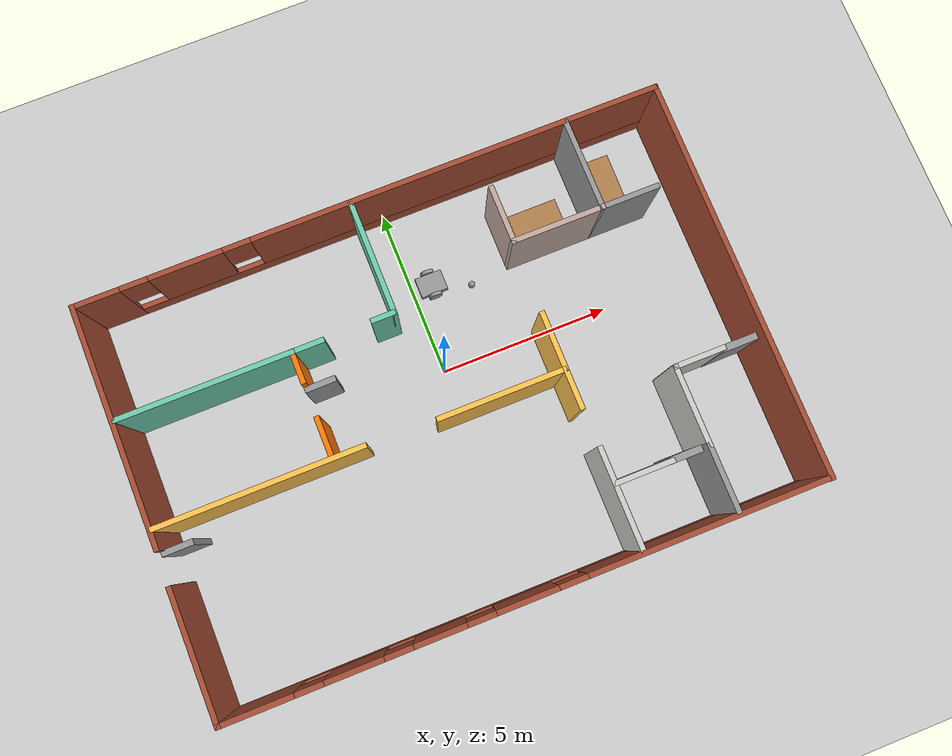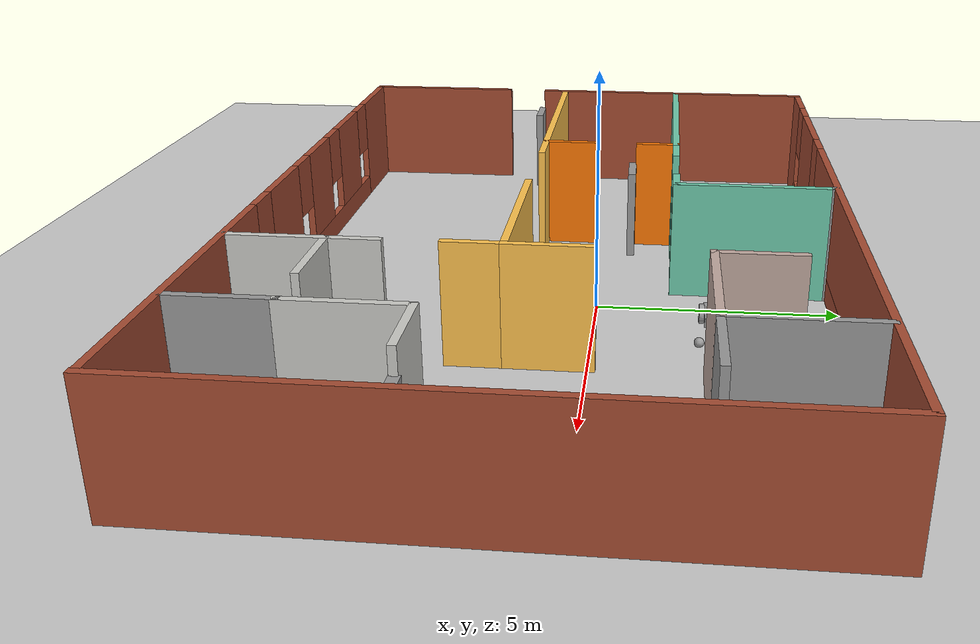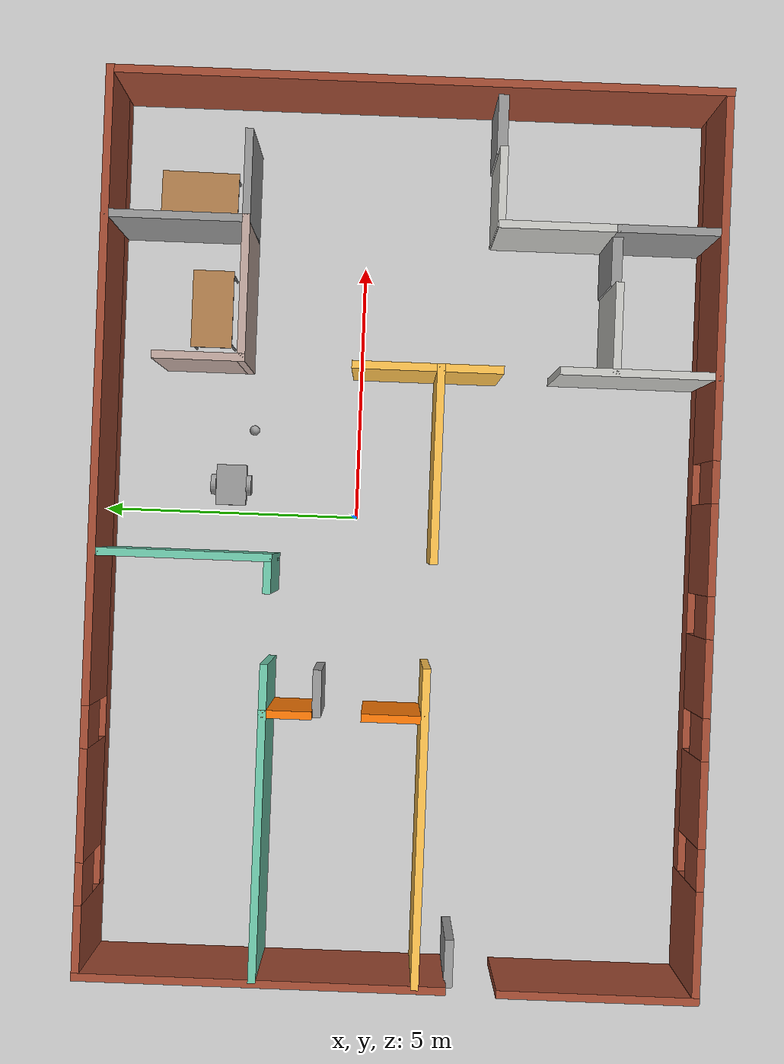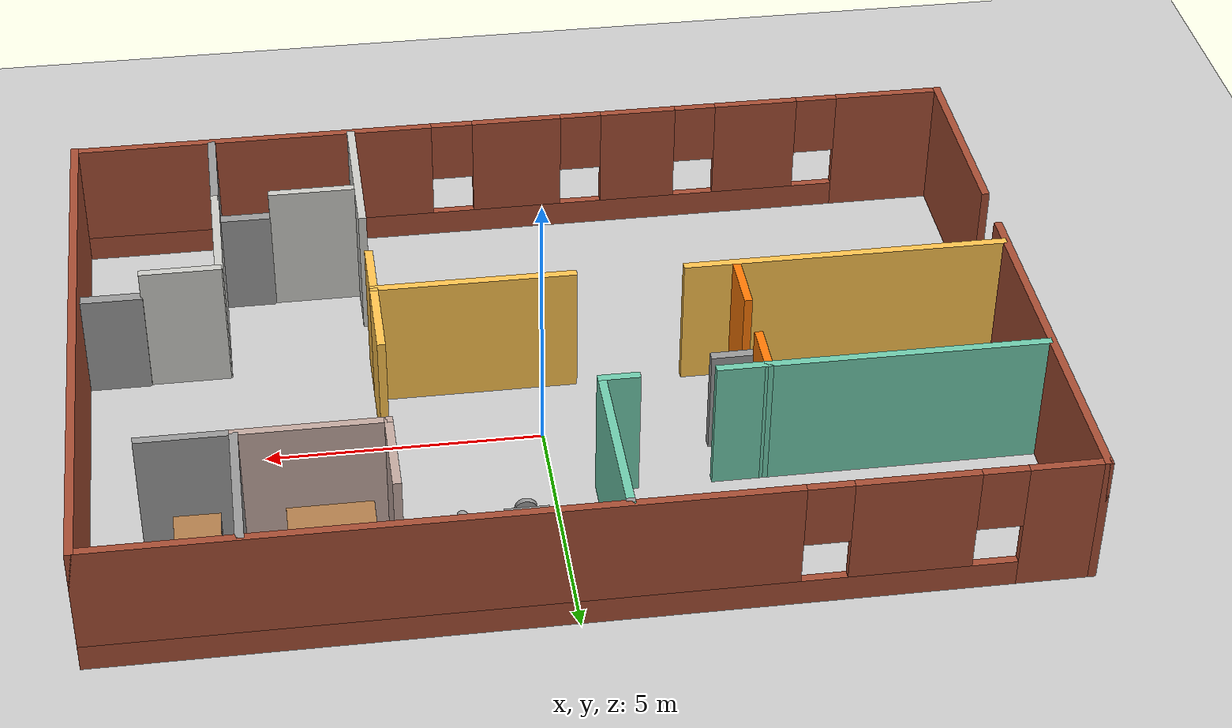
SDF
<sdf version="1.6">
 <world name="default">
  <model name="ground_plane">
   <static>1</static>
   <link name="link">
    <collision name="collision">
     <geometry><plane><normal>0 0 1</normal><size>100 100</size></plane></geometry>
     <surface>
      <contact><collide_bitmask>65535</collide_bitmask></contact>
      <friction><ode><mu>100</mu><mu2>50</mu2></ode></friction>
     </surface>
    </collision>
    <visual name="visual">
     <cast_shadows>0</cast_shadows>
     <geometry><plane><normal>0 0 1</normal><size>100 100</size></plane></geometry>
     <material>
      <script><uri>file://media/materials/scripts/gazebo.material</uri><name>Gazebo/Grey</name></script>
     </material>
    </visual>
   </link>
  </model>
  <model name="Office_Udacity">
   <pose>-0.29797 -0.92162 0 0 -0 0</pose>
   <link name="Door_0">
    <collision name="Door_0_Collision">
     <geometry><box><size>0.9 0.17 2</size></box></geometry>
     <pose>0 0 1 0 -0 0</pose>
    </collision>
    <visual name="Door_0_Visual">
     <pose>0 0 1 0 -0 0</pose>
     <geometry><box><size>0.9 0.17 2</size></box></geometry>
     <material>
      <script><uri>file://media/materials/scripts/gazebo.material</uri><name>Gazebo/Grey</name></script>
     </material>
    </visual>
    <pose>-8.07861 -1.17997 0 0 -0 0</pose>
   </link>
   <link name="Door_1">
    <collision name="Door_1_Collision">
     <geometry><box><size>0.9 0.17 2</size></box></geometry>
     <pose>0 0 1 0 -0 0</pose>
    </collision>
    <visual name="Door_1_Visual">
     <pose>0 0 1 0 -0 0</pose>
     <geometry><box><size>0.9 0.17 2</size></box></geometry>
     <material>
      <script><uri>file://media/materials/scripts/gazebo.material</uri><name>Gazebo/Grey</name></script>
     </material>
    </visual>
    <pose>-3.06619 1.513 0 0 -0 0.01009</pose>
   </link>
   <link name="Door_5">
    <collision name="Door_5_Collision">
     <geometry><box><size>0.959661 0.2 2</size></box></geometry>
     <pose>0 0 1 0 -0 0</pose>
    </collision>
    <visual name="Door_5_Visual">
     <pose>0 0 1 0 -0 0</pose>
     <geometry><box><size>0.959661 0.2 2</size></box></geometry>
     <material>
      <script><uri>file://media/materials/scripts/gazebo.material</uri><name>Gazebo/Grey</name></script>
     </material>
    </visual>
    <pose>5.34472 -3.85243 0 0 -0 0</pose>
   </link>
   <link name="Door_6">
    <collision name="Door_6_Collision">
     <geometry><box><size>1.1287 0.2 2</size></box></geometry>
     <pose>0 0 1 0 -0 0</pose>
    </collision>
    <visual name="Door_6_Visual">
     <pose>0 0 1 0 -0 0</pose>
     <geometry><box><size>1.1287 0.2 2</size></box></geometry>
     <material>
      <script><uri>file://media/materials/scripts/gazebo.material</uri><name>Gazebo/Grey</name></script>
     </material>
    </visual>
    <pose>7.84609 -1.59543 0 0 -0 0</pose>
   </link>
   <link name="Wall_23">
    <collision name="Wall_23_Collision">
     <geometry><box><size>6 0.15 2.5</size></box></geometry>
     <pose>0 0 1.25 0 -0 0</pose>
    </collision>
    <visual name="Wall_23_Visual">
     <pose>0 0 1.25 0 -0 0</pose>
     <geometry><box><size>6 0.15 2.5</size></box></geometry>
     <material>
      <script><uri>file://media/materials/scripts/gazebo.material</uri><name>Gazebo/Grey</name></script>
      <ambient>1 0.764706 0.305882 1</ambient>
     </material>
     <meta><layer>0</layer></meta>
    </visual>
    <pose>-5.4726 -0.539 0 0 -0 0</pose>
   </link>
   <link name="Wall_25">
    <collision name="Wall_25_Collision">
     <geometry><box><size>1.25 0.15 2.5</size></box></geometry>
     <pose>0 0 1.25 0 -0 0</pose>
    </collision>
    <visual name="Wall_25_Visual">
     <pose>0 0 1.25 0 -0 0</pose>
     <geometry><box><size>1.25 0.15 2.5</size></box></geometry>
     <material>
      <script><uri>file://media/materials/scripts/gazebo.material</uri><name>Gazebo/Grey</name></script>
      <ambient>0.996078 0.47451 0.0196078 1</ambient>
     </material>
     <meta><layer>0</layer></meta>
    </visual>
    <pose>-3.43548 0.030226 0 0 -0 1.5708</pose>
   </link>
   <link name="Wall_27">
    <collision name="Wall_27_Collision">
     <geometry><box><size>1 0.15 2.5</size></box></geometry>
     <pose>0 0 1.25 0 -0 0</pose>
    </collision>
    <visual name="Wall_27_Visual">
     <pose>0 0 1.25 0 -0 0</pose>
     <geometry><box><size>1 0.15 2.5</size></box></geometry>
     <material>
      <script><uri>file://media/materials/scripts/gazebo.material</uri><name>Gazebo/Grey</name></script>
      <ambient>0.996078 0.47451 0.0196078 1</ambient>
     </material>
     <meta><layer>0</layer></meta>
    </visual>
    <pose>-3.43554 2.07794 0 0 -0 1.57094</pose>
   </link>
   <link name="Wall_28">
    <collision name="Wall_28_Collision">
     <geometry><box><size>1 0.15 2.5</size></box></geometry>
     <pose>0 0 1.25 0 -0 0</pose>
    </collision>
    <visual name="Wall_28_Visual">
     <pose>0 0 1.25 0 -0 0</pose>
     <geometry><box><size>1 0.15 2.5</size></box></geometry>
     <material>
      <script><uri>file://media/materials/scripts/gazebo.material</uri><name>Gazebo/Grey</name></script>
      <ambient>0.435294 0.796078 0.67451 1</ambient>
     </material>
     <meta><layer>0</layer></meta>
    </visual>
    <pose>-3.01054 2.50294 0 0 -0 -0.000132</pose>
   </link>
   <link name="Wall_3">
    <pose>0.009 5.8 0 0 -0 0</pose>
    <visual name="Wall_3_Visual_0">
     <pose>-7.84891 0 1.25 0 -0 0</pose>
     <geometry><box><size>1.40738 0.15 2.5</size></box></geometry>
     <material>
      <script><uri>file://media/materials/scripts/gazebo.material</uri><name>Gazebo/Bricks</name></script>
      <ambient>1 1 1 1</ambient>
     </material>
     <meta><layer>0</layer></meta>
    </visual>
    <collision name="Wall_3_Collision_0">
     <geometry><box><size>1.40738 0.15 2.5</size></box></geometry>
     <pose>-7.84891 0 1.25 0 -0 0</pose>
    </collision>
    <visual name="Wall_3_Visual_1">
     <pose>0.703691 0 0.25 0 -0 0</pose>
     <geometry><box><size>15.6978 0.15 0.5</size></box></geometry>
     <material>
      <script><uri>file://media/materials/scripts/gazebo.material</uri><name>Gazebo/Bricks</name></script>
      <ambient>1 1 1 1</ambient>
     </material>
     <meta><layer>0</layer></meta>
    </visual>
    <collision name="Wall_3_Collision_1">
     <geometry><box><size>15.6978 0.15 0.5</size></box></geometry>
     <pose>0.703691 0 0.25 0 -0 0</pose>
    </collision>
    <visual name="Wall_3_Visual_2">
     <pose>-5.2807 0 1.5 0 -0 0</pose>
     <geometry><box><size>2.12904 0.15 2</size></box></geometry>
     <material>
      <script><uri>file://media/materials/scripts/gazebo.material</uri><name>Gazebo/Bricks</name></script>
      <ambient>1 1 1 1</ambient>
     </material>
     <meta><layer>0</layer></meta>
    </visual>
    <collision name="Wall_3_Collision_2">
     <geometry><box><size>2.12904 0.15 2</size></box></geometry>
     <pose>-5.2807 0 1.5 0 -0 0</pose>
    </collision>
    <visual name="Wall_3_Visual_3">
     <pose>2.56821 0 1.5 0 -0 0</pose>
     <geometry><box><size>11.9688 0.15 2</size></box></geometry>
     <material>
      <script><uri>file://media/materials/scripts/gazebo.material</uri><name>Gazebo/Bricks</name></script>
      <ambient>1 1 1 1</ambient>
     </material>
     <meta><layer>0</layer></meta>
    </visual>
    <collision name="Wall_3_Collision_3">
     <geometry><box><size>11.9688 0.15 2</size></box></geometry>
     <pose>2.56821 0 1.5 0 -0 0</pose>
    </collision>
    <visual name="Wall_3_Visual_4">
     <pose>-6.74522 0 1.9 0 -0 0</pose>
     <geometry><box><size>0.8 0.15 1.2</size></box></geometry>
     <material>
      <script><uri>file://media/materials/scripts/gazebo.material</uri><name>Gazebo/Bricks</name></script>
      <ambient>1 1 1 1</ambient>
     </material>
     <meta><layer>0</layer></meta>
    </visual>
    <collision name="Wall_3_Collision_4">
     <geometry><box><size>0.8 0.15 1.2</size></box></geometry>
     <pose>-6.74522 0 1.9 0 -0 0</pose>
    </collision>
    <visual name="Wall_3_Visual_5">
     <pose>-3.81618 0 1.9 0 -0 0</pose>
     <geometry><box><size>0.8 0.15 1.2</size></box></geometry>
     <material>
      <script><uri>file://media/materials/scripts/gazebo.material</uri><name>Gazebo/Bricks</name></script>
      <ambient>1 1 1 1</ambient>
     </material>
     <meta><layer>0</layer></meta>
    </visual>
    <collision name="Wall_3_Collision_5">
     <geometry><box><size>0.8 0.15 1.2</size></box></geometry>
     <pose>-3.81618 0 1.9 0 -0 0</pose>
    </collision>
   </link>
   <link name="Wall_30">
    <collision name="Wall_30_Collision">
     <geometry><box><size>0.75 0.15 2.5</size></box></geometry>
     <pose>0 0 1.25 0 -0 0</pose>
    </collision>
    <visual name="Wall_30_Visual">
     <pose>0 0 1.25 0 -0 0</pose>
     <geometry><box><size>0.75 0.15 2.5</size></box></geometry>
     <material>
      <script><uri>file://media/materials/scripts/gazebo.material</uri><name>Gazebo/Grey</name></script>
      <ambient>0.435294 0.796078 0.67451 1</ambient>
     </material>
     <meta><layer>0</layer></meta>
    </visual>
    <pose>-0.821601 2.507 0 0 -0 0</pose>
   </link>
   <link name="Wall_31">
    <collision name="Wall_31_Collision">
     <geometry><box><size>3.4 0.15 2.5</size></box></geometry>
     <pose>0 0 1.25 0 -0 0</pose>
    </collision>
    <visual name="Wall_31_Visual">
     <pose>0 0 1.25 0 -0 0</pose>
     <geometry><box><size>3.4 0.15 2.5</size></box></geometry>
     <material>
      <script><uri>file://media/materials/scripts/gazebo.material</uri><name>Gazebo/Grey</name></script>
      <ambient>0.435294 0.796078 0.67451 1</ambient>
     </material>
     <meta><layer>0</layer></meta>
    </visual>
    <pose>-0.521601 4.132 0 0 -0 1.5708</pose>
   </link>
   <link name="Wall_32">
    <collision name="Wall_32_Collision">
     <geometry><box><size>0.15 0.15 2.5</size></box></geometry>
     <pose>0 0 1.25 0 -0 0</pose>
    </collision>
    <visual name="Wall_32_Visual">
     <pose>0 0 1.25 0 -0 0</pose>
     <geometry><box><size>0.15 0.15 2.5</size></box></geometry>
     <material>
      <script><uri>file://media/materials/scripts/gazebo.material</uri><name>Gazebo/Grey</name></script>
      <ambient>1 1 1 1</ambient>
     </material>
     <meta><layer>0</layer></meta>
    </visual>
    <pose>-0.521601 5.757 0 0 -0 0</pose>
   </link>
   <link name="Wall_34">
    <collision name="Wall_34_Collision">
     <geometry><box><size>5.1 0.15 2.5</size></box></geometry>
     <pose>0 0 1.25 0 -0 0</pose>
    </collision>
    <visual name="Wall_34_Visual">
     <pose>0 0 1.25 0 -0 0</pose>
     <geometry><box><size>5.1 0.15 2.5</size></box></geometry>
     <material>
      <script><uri>file://media/materials/scripts/gazebo.material</uri><name>Gazebo/Grey</name></script>
      <ambient>0.435294 0.796078 0.67451 1</ambient>
     </material>
     <meta><layer>0</layer></meta>
    </visual>
    <pose>-5.9106 2.503 0 0 -0 3.14159</pose>
   </link>
   <link name="Wall_36">
    <collision name="Wall_36_Collision">
     <geometry><box><size>2 0.15 2.5</size></box></geometry>
     <pose>0 0 1.25 0 -0 0</pose>
    </collision>
    <visual name="Wall_36_Visual">
     <pose>0 0 1.25 0 -0 0</pose>
     <geometry><box><size>2 0.15 2.5</size></box></geometry>
     <material>
      <script><uri>file://media/materials/scripts/gazebo.material</uri><name>Gazebo/Grey</name></script>
      <ambient>1 1 1 1</ambient>
     </material>
     <meta><layer>0</layer></meta>
    </visual>
    <pose>5.86992 -4.76879 0 0 -0 1.5708</pose>
   </link>
   <link name="Wall_42">
    <collision name="Wall_42_Collision">
     <geometry><box><size>3.75 0.15 2.5</size></box></geometry>
     <pose>0 0 1.25 0 -0 0</pose>
    </collision>
    <visual name="Wall_42_Visual">
     <pose>0 0 1.25 0 -0 0</pose>
     <geometry><box><size>3.75 0.15 2.5</size></box></geometry>
     <material>
      <script><uri>file://media/materials/scripts/gazebo.material</uri><name>Gazebo/Grey</name></script>
      <ambient>1 0.764706 0.305882 1</ambient>
     </material>
     <meta><layer>0</layer></meta>
    </visual>
    <pose>1.34487 -0.590852 0 0 -0 0</pose>
   </link>
   <link name="Wall_43">
    <collision name="Wall_43_Collision">
     <geometry><box><size>1.25 0.15 2.5</size></box></geometry>
     <pose>0 0 1.25 0 -0 0</pose>
    </collision>
    <visual name="Wall_43_Visual">
     <pose>0 0 1.25 0 -0 0</pose>
     <geometry><box><size>1.25 0.15 2.5</size></box></geometry>
     <material>
      <script><uri>file://media/materials/scripts/gazebo.material</uri><name>Gazebo/Grey</name></script>
      <ambient>1 0.764706 0.305882 1</ambient>
     </material>
     <meta><layer>0</layer></meta>
    </visual>
    <pose>3.14487 -1.14085 0 0 -0 -1.5708</pose>
   </link>
   <link name="Wall_47">
    <collision name="Wall_47_Collision">
     <geometry><box><size>3 0.15 2.5</size></box></geometry>
     <pose>0 0 1.25 0 -0 0</pose>
    </collision>
    <visual name="Wall_47_Visual">
     <pose>0 0 1.25 0 -0 0</pose>
     <geometry><box><size>3 0.15 2.5</size></box></geometry>
     <material>
      <script><uri>file://media/materials/scripts/gazebo.material</uri><name>Gazebo/CeilingTiled</name></script>
      <ambient>1 1 1 1</ambient>
     </material>
     <meta><layer>0</layer></meta>
    </visual>
    <pose>3.17852 -4.30533 0 0 -0 -1.5708</pose>
   </link>
   <link name="Wall_49">
    <collision name="Wall_49_Collision">
     <geometry><box><size>1.75 0.15 2.5</size></box></geometry>
     <pose>0 0 1.25 0 -0 0</pose>
    </collision>
    <visual name="Wall_49_Visual">
     <pose>0 0 1.25 0 -0 0</pose>
     <geometry><box><size>1.75 0.15 2.5</size></box></geometry>
     <material>
      <script><uri>file://media/materials/scripts/gazebo.material</uri><name>Gazebo/CeilingTiled</name></script>
      <ambient>1 1 1 1</ambient>
     </material>
     <meta><layer>0</layer></meta>
    </visual>
    <pose>3.99878 -3.86168 0 0 -0 0</pose>
   </link>
   <link name="Wall_5">
    <collision name="Wall_5_Collision">
     <geometry><box><size>7 0.15 2.5</size></box></geometry>
     <pose>0 0 1.25 0 -0 0</pose>
    </collision>
    <visual name="Wall_5_Visual">
     <pose>0 0 1.25 0 -0 0</pose>
     <geometry><box><size>7 0.15 2.5</size></box></geometry>
     <material>
      <script><uri>file://media/materials/scripts/gazebo.material</uri><name>Gazebo/Bricks</name></script>
      <ambient>1 1 1 1</ambient>
     </material>
     <meta><layer>0</layer></meta>
    </visual>
    <pose>-8.4686 2.375 0 0 -0 -1.5708</pose>
   </link>
   <link name="Wall_53">
    <collision name="Wall_53_Collision">
     <geometry><box><size>2.36278 0.15 2.5</size></box></geometry>
     <pose>0 0 1.25 0 -0 0</pose>
    </collision>
    <visual name="Wall_53_Visual">
     <pose>0 0 1.25 0 -0 0</pose>
     <geometry><box><size>2.36278 0.15 2.5</size></box></geometry>
     <material>
      <script><uri>file://media/materials/scripts/gazebo.material</uri><name>Gazebo/CeilingTiled</name></script>
      <ambient>1 1 1 1</ambient>
     </material>
     <meta><layer>0</layer></meta>
    </visual>
    <pose>5.86992 -2.7374 0 0 -0 1.5708</pose>
   </link>
   <link name="Wall_54">
    <collision name="Wall_54_Collision">
     <geometry><box><size>1.5 0.15 2.5</size></box></geometry>
     <pose>0 0 1.25 0 -0 0</pose>
    </collision>
    <visual name="Wall_54_Visual">
     <pose>0 0 1.25 0 -0 0</pose>
     <geometry><box><size>1.5 0.15 2.5</size></box></geometry>
     <material>
      <script><uri>file://media/materials/scripts/gazebo.material</uri><name>Gazebo/CeilingTiled</name></script>
      <ambient>1 1 1 1</ambient>
     </material>
     <meta><layer>0</layer></meta>
    </visual>
    <pose>6.56779 -1.60814 0 0 -0 0</pose>
   </link>
   <link name="Wall_56">
    <collision name="Wall_56_Collision">
     <geometry><box><size>11.75 0.15 2.5</size></box></geometry>
     <pose>0 0 1.25 0 -0 0</pose>
    </collision>
    <visual name="Wall_56_Visual">
     <pose>0 0 1.25 0 -0 0</pose>
     <geometry><box><size>11.75 0.15 2.5</size></box></geometry>
     <material>
      <script><uri>file://media/materials/scripts/gazebo.material</uri><name>Gazebo/Bricks</name></script>
      <ambient>1 1 1 1</ambient>
     </material>
     <meta><layer>0</layer></meta>
    </visual>
    <pose>8.4866 0 0 0 -0 -1.5708</pose>
   </link>
   <link name="Wall_58">
    <collision name="Wall_58_Collision">
     <geometry><box><size>1.75 0.15 2.5</size></box></geometry>
     <pose>0 0 1.25 0 -0 0</pose>
    </collision>
    <visual name="Wall_58_Visual">
     <pose>0 0 1.25 0 -0 0</pose>
     <geometry><box><size>1.75 0.15 2.5</size></box></geometry>
     <material>
      <script><uri>file://media/materials/scripts/gazebo.material</uri><name>Gazebo/Grey</name></script>
      <ambient>1 0.764706 0.305882 1</ambient>
     </material>
     <meta><layer>0</layer></meta>
    </visual>
    <pose>3.14487 0.209147 0 0 -0 1.5708</pose>
   </link>
   <link name="Wall_67">
    <collision name="Wall_67_Collision">
     <geometry><box><size>1.75 0.15 2.5</size></box></geometry>
     <pose>0 0 1.25 0 -0 0</pose>
    </collision>
    <visual name="Wall_67_Visual">
     <pose>0 0 1.25 0 -0 0</pose>
     <geometry><box><size>1.75 0.15 2.5</size></box></geometry>
     <material>
      <script><uri>file://media/materials/scripts/gazebo.material</uri><name>Gazebo/Grey</name></script>
      <ambient>0.760784 0.662745 0.627451 1</ambient>
     </material>
     <meta><layer>0</layer></meta>
    </visual>
    <pose>3.1922 3.95525 0 0 -0 -1.5708</pose>
   </link>
   <link name="Wall_68">
    <collision name="Wall_68_Collision">
     <geometry><box><size>2.75 0.15 2.5</size></box></geometry>
     <pose>0 0 1.25 0 -0 0</pose>
    </collision>
    <visual name="Wall_68_Visual">
     <pose>0 0 1.25 0 -0 0</pose>
     <geometry><box><size>2.75 0.15 2.5</size></box></geometry>
     <material>
      <script><uri>file://media/materials/scripts/gazebo.material</uri><name>Gazebo/Grey</name></script>
      <ambient>0.760784 0.662745 0.627451 1</ambient>
     </material>
     <meta><layer>0</layer></meta>
    </visual>
    <pose>4.49219 3.15524 0 0 -0 0</pose>
   </link>
   <link name="Wall_7">
    <collision name="Wall_7_Collision">
     <geometry><box><size>3.8 0.15 2.5</size></box></geometry>
     <pose>0 0 1.25 0 -0 0</pose>
    </collision>
    <visual name="Wall_7_Visual">
     <pose>0 0 1.25 0 -0 0</pose>
     <geometry><box><size>3.8 0.15 2.5</size></box></geometry>
     <material>
      <script><uri>file://media/materials/scripts/gazebo.material</uri><name>Gazebo/Bricks</name></script>
      <ambient>1 1 1 1</ambient>
     </material>
     <meta><layer>0</layer></meta>
    </visual>
    <pose>-8.4866 -3.96 0 0 -0 -1.5708</pose>
   </link>
   <link name="Wall_73">
    <collision name="Wall_73_Collision">
     <geometry><box><size>2.75 0.15 2.5</size></box></geometry>
     <pose>0 0 1.25 0 -0 0</pose>
    </collision>
    <visual name="Wall_73_Visual">
     <pose>0 0 1.25 0 -0 0</pose>
     <geometry><box><size>2.75 0.15 2.5</size></box></geometry>
     <material>
      <script><uri>file://media/materials/scripts/gazebo.material</uri><name>Gazebo/Grey</name></script>
      <ambient>1 1 1 1</ambient>
     </material>
     <meta><layer>0</layer></meta>
    </visual>
    <pose>5.7922 4.45524 0 0 -0 1.5708</pose>
   </link>
   <link name="Wall_75">
    <collision name="Wall_75_Collision">
     <geometry><box><size>1.75 0.15 2.5</size></box></geometry>
     <pose>0 0 1.25 0 -0 0</pose>
    </collision>
    <visual name="Wall_75_Visual">
     <pose>0 0 1.25 0 -0 0</pose>
     <geometry><box><size>1.75 0.15 2.5</size></box></geometry>
     <material>
      <script><uri>file://media/materials/scripts/gazebo.material</uri><name>Gazebo/Grey</name></script>
      <ambient>1 1 1 1</ambient>
     </material>
     <meta><layer>0</layer></meta>
    </visual>
    <pose>6.5922 3.15524 0 0 -0 0</pose>
   </link>
   <link name="Wall_9">
    <pose>-0.061602 -5.785 0 0 -0 0</pose>
    <visual name="Wall_9_Visual_0">
     <pose>-7.43426 0 1.25 0 -0 0</pose>
     <geometry><box><size>2.13149 0.15 2.5</size></box></geometry>
     <material>
      <script><uri>file://media/materials/scripts/gazebo.material</uri><name>Gazebo/Bricks</name></script>
      <ambient>1 1 1 1</ambient>
     </material>
     <meta><layer>0</layer></meta>
    </visual>
    <collision name="Wall_9_Collision_0">
     <geometry><box><size>2.13149 0.15 2.5</size></box></geometry>
     <pose>-7.43426 0 1.25 0 -0 0</pose>
    </collision>
    <visual name="Wall_9_Visual_1">
     <pose>1.06574 0 0.25 0 -0 0</pose>
     <geometry><box><size>14.8685 0.15 0.5</size></box></geometry>
     <material>
      <script><uri>file://media/materials/scripts/gazebo.material</uri><name>Gazebo/Bricks</name></script>
      <ambient>1 1 1 1</ambient>
     </material>
     <meta><layer>0</layer></meta>
    </visual>
    <collision name="Wall_9_Collision_1">
     <geometry><box><size>14.8685 0.15 0.5</size></box></geometry>
     <pose>1.06574 0 0.25 0 -0 0</pose>
    </collision>
    <visual name="Wall_9_Visual_2">
     <pose>-4.75244 0 1.5 0 -0 0</pose>
     <geometry><box><size>1.63215 0.15 2</size></box></geometry>
     <material>
      <script><uri>file://media/materials/scripts/gazebo.material</uri><name>Gazebo/Bricks</name></script>
      <ambient>1 1 1 1</ambient>
     </material>
     <meta><layer>0</layer></meta>
    </visual>
    <collision name="Wall_9_Collision_2">
     <geometry><box><size>1.63215 0.15 2</size></box></geometry>
     <pose>-4.75244 0 1.5 0 -0 0</pose>
    </collision>
    <visual name="Wall_9_Visual_3">
     <pose>-2.39874 0 1.5 0 -0 0</pose>
     <geometry><box><size>1.47524 0.15 2</size></box></geometry>
     <material>
      <script><uri>file://media/materials/scripts/gazebo.material</uri><name>Gazebo/Bricks</name></script>
      <ambient>1 1 1 1</ambient>
     </material>
     <meta><layer>0</layer></meta>
    </visual>
    <collision name="Wall_9_Collision_3">
     <geometry><box><size>1.47524 0.15 2</size></box></geometry>
     <pose>-2.39874 0 1.5 0 -0 0</pose>
    </collision>
    <visual name="Wall_9_Visual_4">
     <pose>0.007255 0 1.5 0 -0 0</pose>
     <geometry><box><size>1.73676 0.15 2</size></box></geometry>
     <material>
      <script><uri>file://media/materials/scripts/gazebo.material</uri><name>Gazebo/Bricks</name></script>
      <ambient>1 1 1 1</ambient>
     </material>
     <meta><layer>0</layer></meta>
    </visual>
    <collision name="Wall_9_Collision_4">
     <geometry><box><size>1.73676 0.15 2</size></box></geometry>
     <pose>0.007255 0 1.5 0 -0 0</pose>
    </collision>
    <visual name="Wall_9_Visual_5">
     <pose>5.08782 0 1.5 0 -0 0</pose>
     <geometry><box><size>6.82437 0.15 2</size></box></geometry>
     <material>
      <script><uri>file://media/materials/scripts/gazebo.material</uri><name>Gazebo/Bricks</name></script>
      <ambient>1 1 1 1</ambient>
     </material>
     <meta><layer>0</layer></meta>
    </visual>
    <collision name="Wall_9_Collision_5">
     <geometry><box><size>6.82437 0.15 2</size></box></geometry>
     <pose>5.08782 0 1.5 0 -0 0</pose>
    </collision>
    <visual name="Wall_9_Visual_6">
     <pose>-5.96851 0 1.9 0 -0 0</pose>
     <geometry><box><size>0.8 0.15 1.2</size></box></geometry>
     <material>
      <script><uri>file://media/materials/scripts/gazebo.material</uri><name>Gazebo/Bricks</name></script>
      <ambient>1 1 1 1</ambient>
     </material>
     <meta><layer>0</layer></meta>
    </visual>
    <collision name="Wall_9_Collision_6">
     <geometry><box><size>0.8 0.15 1.2</size></box></geometry>
     <pose>-5.96851 0 1.9 0 -0 0</pose>
    </collision>
    <visual name="Wall_9_Visual_7">
     <pose>-3.53636 0 1.9 0 -0 0</pose>
     <geometry><box><size>0.8 0.15 1.2</size></box></geometry>
     <material>
      <script><uri>file://media/materials/scripts/gazebo.material</uri><name>Gazebo/Bricks</name></script>
      <ambient>1 1 1 1</ambient>
     </material>
     <meta><layer>0</layer></meta>
    </visual>
    <collision name="Wall_9_Collision_7">
     <geometry><box><size>0.8 0.15 1.2</size></box></geometry>
     <pose>-3.53636 0 1.9 0 -0 0</pose>
    </collision>
    <visual name="Wall_9_Visual_8">
     <pose>-1.26112 0 1.9 0 -0 0</pose>
     <geometry><box><size>0.8 0.15 1.2</size></box></geometry>
     <material>
      <script><uri>file://media/materials/scripts/gazebo.material</uri><name>Gazebo/Bricks</name></script>
      <ambient>1 1 1 1</ambient>
     </material>
     <meta><layer>0</layer></meta>
    </visual>
    <collision name="Wall_9_Collision_8">
     <geometry><box><size>0.8 0.15 1.2</size></box></geometry>
     <pose>-1.26112 0 1.9 0 -0 0</pose>
    </collision>
    <visual name="Wall_9_Visual_9">
     <pose>1.27563 0 1.9 0 -0 0</pose>
     <geometry><box><size>0.8 0.15 1.2</size></box></geometry>
     <material>
      <script><uri>file://media/materials/scripts/gazebo.material</uri><name>Gazebo/Bricks</name></script>
      <ambient>1 1 1 1</ambient>
     </material>
     <meta><layer>0</layer></meta>
    </visual>
    <collision name="Wall_9_Collision_9">
     <geometry><box><size>0.8 0.15 1.2</size></box></geometry>
     <pose>1.27563 0 1.9 0 -0 0</pose>
    </collision>
   </link>
   <static>1</static>
  </model>
  <model name="table">
   <static>1</static>
   <link name="link">
    <collision name="surface">
     <pose>0 0 1 0 -0 0</pose>
     <geometry><box><size>1.5 0.8 0.03</size></box></geometry>
     <surface><friction><ode><mu>0.6</mu><mu2>0.6</mu2></ode></friction></surface>
    </collision>
    <visual name="visual1">
     <pose>0 0 1 0 -0 0</pose>
     <geometry><box><size>1.5 0.8 0.03</size></box></geometry>
     <material>
      <script><uri>file://media/materials/scripts/gazebo.material</uri><name>Gazebo/Wood</name></script>
     </material>
    </visual>
    <collision name="front_left_leg">
     <pose>0.68 0.38 0.5 0 -0 0</pose>
     <geometry><cylinder><radius>0.02</radius><length>1</length></cylinder></geometry>
    </collision>
    <visual name="front_left_leg">
     <pose>0.68 0.38 0.5 0 -0 0</pose>
     <geometry><cylinder><radius>0.02</radius><length>1</length></cylinder></geometry>
     <material>
      <script><uri>file://media/materials/scripts/gazebo.material</uri><name>Gazebo/Grey</name></script>
     </material>
    </visual>
    <collision name="front_right_leg">
     <pose>0.68 -0.38 0.5 0 -0 0</pose>
     <geometry><cylinder><radius>0.02</radius><length>1</length></cylinder></geometry>
    </collision>
    <visual name="front_right_leg">
     <pose>0.68 -0.38 0.5 0 -0 0</pose>
     <geometry><cylinder><radius>0.02</radius><length>1</length></cylinder></geometry>
     <material>
      <script><uri>file://media/materials/scripts/gazebo.material</uri><name>Gazebo/Grey</name></script>
     </material>
    </visual>
    <collision name="back_right_leg">
     <pose>-0.68 -0.38 0.5 0 -0 0</pose>
     <geometry><cylinder><radius>0.02</radius><length>1</length></cylinder></geometry>
    </collision>
    <visual name="back_right_leg">
     <pose>-0.68 -0.38 0.5 0 -0 0</pose>
     <geometry><cylinder><radius>0.02</radius><length>1</length></cylinder></geometry>
     <material>
      <script><uri>file://media/materials/scripts/gazebo.material</uri><name>Gazebo/Grey</name></script>
     </material>
    </visual>
    <collision name="back_left_leg">
     <pose>-0.68 0.38 0.5 0 -0 0</pose>
     <geometry><cylinder><radius>0.02</radius><length>1</length></cylinder></geometry>
    </collision>
    <visual name="back_left_leg">
     <pose>-0.68 0.38 0.5 0 -0 0</pose>
     <geometry><cylinder><radius>0.02</radius><length>1</length></cylinder></geometry>
     <material>
      <script><uri>file://media/materials/scripts/gazebo.material</uri><name>Gazebo/Grey</name></script>
     </material>
    </visual>
   </link>
   <pose>3.96455 2.95136 0 0 -0 0</pose>
  </model>
  <model name="table_0">
   <static>1</static>
   <link name="link">
    <collision name="surface">
     <pose>0 0 1 0 -0 0</pose>
     <geometry><box><size>1.5 0.8 0.03</size></box></geometry>
     <surface><friction><ode><mu>0.6</mu><mu2>0.6</mu2></ode></friction></surface>
    </collision>
    <visual name="visual1">
     <pose>0 0 1 0 -0 0</pose>
     <geometry><box><size>1.5 0.8 0.03</size></box></geometry>
     <material>
      <script><uri>file://media/materials/scripts/gazebo.material</uri><name>Gazebo/Wood</name></script>
     </material>
    </visual>
    <collision name="front_left_leg">
     <pose>0.68 0.38 0.5 0 -0 0</pose>
     <geometry><cylinder><radius>0.02</radius><length>1</length></cylinder></geometry>
    </collision>
    <visual name="front_left_leg">
     <pose>0.68 0.38 0.5 0 -0 0</pose>
     <geometry><cylinder><radius>0.02</radius><length>1</length></cylinder></geometry>
     <material>
      <script><uri>file://media/materials/scripts/gazebo.material</uri><name>Gazebo/Grey</name></script>
     </material>
    </visual>
    <collision name="front_right_leg">
     <pose>0.68 -0.38 0.5 0 -0 0</pose>
     <geometry><cylinder><radius>0.02</radius><length>1</length></cylinder></geometry>
    </collision>
    <visual name="front_right_leg">
     <pose>0.68 -0.38 0.5 0 -0 0</pose>
     <geometry><cylinder><radius>0.02</radius><length>1</length></cylinder></geometry>
     <material>
      <script><uri>file://media/materials/scripts/gazebo.material</uri><name>Gazebo/Grey</name></script>
     </material>
    </visual>
    <collision name="back_right_leg">
     <pose>-0.68 -0.38 0.5 0 -0 0</pose>
     <geometry><cylinder><radius>0.02</radius><length>1</length></cylinder></geometry>
    </collision>
    <visual name="back_right_leg">
     <pose>-0.68 -0.38 0.5 0 -0 0</pose>
     <geometry><cylinder><radius>0.02</radius><length>1</length></cylinder></geometry>
     <material>
      <script><uri>file://media/materials/scripts/gazebo.material</uri><name>Gazebo/Grey</name></script>
     </material>
    </visual>
    <collision name="back_left_leg">
     <pose>-0.68 0.38 0.5 0 -0 0</pose>
     <geometry><cylinder><radius>0.02</radius><length>1</length></cylinder></geometry>
    </collision>
    <visual name="back_left_leg">
     <pose>-0.68 0.38 0.5 0 -0 0</pose>
     <geometry><cylinder><radius>0.02</radius><length>1</length></cylinder></geometry>
     <material>
      <script><uri>file://media/materials/scripts/gazebo.material</uri><name>Gazebo/Grey</name></script>
     </material>
    </visual>
   </link>
   <pose>6.22386 3.27565 0 0 0 -1.58334</pose>
  </model>
  <model name="Zippy_Beta">
   <link name="link">
    <inertial>
     <mass>1</mass>
     <inertia>
      <ixx>0.166667</ixx>
      <ixy>0</ixy>
      <ixz>0</ixz>
      <iyy>0.166667</iyy>
      <iyz>0</iyz>
      <izz>0.166667</izz>
     </inertia>
    </inertial>
    <visual name="visual">
     <geometry><box><size>0.8 0.6 0.2</size></box></geometry>
     <material>
      <script><name>Gazebo/Grey</name><uri>file://media/materials/scripts/gazebo.material</uri></script>
      <shader type="pixel"><normal_map>__default__</normal_map></shader>
      <ambient>0.3 0.3 0.3 1</ambient>
      <diffuse>0.7 0.7 0.7 1</diffuse>
      <specular>0.01 0.01 0.01 1</specular>
      <emissive>0 0 0 1</emissive>
     </material>
    </visual>
    <collision name="collision">
     <geometry><box><size>0.8 0.6 0.2</size></box></geometry>
     <surface>
      <friction>
       <ode><mu>1</mu><mu2>1</mu2><fdir1>0 0 0</fdir1><slip1>0</slip1><slip2>0</slip2></ode>
       <torsional>
        <coefficient>1</coefficient>
        <patch_radius>0</patch_radius>
        <surface_radius>0</surface_radius>
        <use_patch_radius>1</use_patch_radius>
        <ode><slip>0</slip></ode>
       </torsional>
      </friction>
      <bounce><restitution_coefficient>0</restitution_coefficient><threshold>1e+06</threshold></bounce>
      <contact>
       <collide_without_contact>0</collide_without_contact>
       <collide_without_contact_bitmask>1</collide_without_contact_bitmask>
       <collide_bitmask>1</collide_bitmask>
       <ode>
        <soft_cfm>0</soft_cfm>
        <soft_erp>0.2</soft_erp>
        <kp>1e+13</kp>
        <kd>1</kd>
        <max_vel>0.01</max_vel>
        <min_depth>0</min_depth>
       </ode>
       <bullet>
        <split_impulse>1</split_impulse>
        <split_impulse_penetration_threshold>-0.01</split_impulse_penetration_threshold>
        <soft_cfm>0</soft_cfm>
        <soft_erp>0.2</soft_erp>
        <kp>1e+13</kp>
        <kd>1</kd>
       </bullet>
      </contact>
     </surface>
    </collision>
   </link>
   <link name="link_0">
    <inertial>
     <mass>1</mass>
     <inertia><ixx>0.145833</ixx><ixy>0</ixy><ixz>0</ixz><iyy>0.145833</iyy><iyz>0</iyz><izz>0.125</izz></inertia>
    </inertial>
    <pose>0 0.350159 0.02 0 -0 0</pose>
    <visual name="visual">
     <pose>0 0 0 1.57 -0 0</pose>
     <geometry><cylinder><radius>0.2</radius><length>0.1</length></cylinder></geometry>
     <material>
      <lighting>1</lighting>
      <script><uri>file://media/materials/scripts/gazebo.material</uri><name>Gazebo/Grey</name></script>
      <shader type="pixel"><normal_map>__default__</normal_map></shader>
      <ambient>0.3 0.3 0.3 1</ambient>
      <diffuse>0.7 0.7 0.7 1</diffuse>
      <specular>0.01 0.01 0.01 1</specular>
      <emissive>0 0 0 1</emissive>
     </material>
    </visual>
    <collision name="collision">
     <pose>0 0 0 1.57 -0 0</pose>
     <geometry><cylinder><radius>0.2</radius><length>0.1</length></cylinder></geometry>
     <surface>
      <friction>
       <ode><mu>1</mu><mu2>1</mu2><fdir1>0 0 0</fdir1><slip1>0</slip1><slip2>0</slip2></ode>
       <torsional>
        <coefficient>1</coefficient>
        <patch_radius>0</patch_radius>
        <surface_radius>0</surface_radius>
        <use_patch_radius>1</use_patch_radius>
        <ode><slip>0</slip></ode>
       </torsional>
      </friction>
      <bounce><restitution_coefficient>0</restitution_coefficient><threshold>1e+06</threshold></bounce>
      <contact>
       <collide_without_contact>0</collide_without_contact>
       <collide_without_contact_bitmask>1</collide_without_contact_bitmask>
       <collide_bitmask>1</collide_bitmask>
       <ode>
        <soft_cfm>0</soft_cfm>
        <soft_erp>0.2</soft_erp>
        <kp>1e+13</kp>
        <kd>1</kd>
        <max_vel>0.01</max_vel>
        <min_depth>0</min_depth>
       </ode>
       <bullet>
        <split_impulse>1</split_impulse>
        <split_impulse_penetration_threshold>-0.01</split_impulse_penetration_threshold>
        <soft_cfm>0</soft_cfm>
        <soft_erp>0.2</soft_erp>
        <kp>1e+13</kp>
        <kd>1</kd>
       </bullet>
      </contact>
     </surface>
    </collision>
   </link>
   <link name="link_0_clone">
    <inertial>
     <mass>1</mass>
     <inertia><ixx>0.145833</ixx><ixy>0</ixy><ixz>0</ixz><iyy>0.145833</iyy><iyz>0</iyz><izz>0.125</izz></inertia>
    </inertial>
    <pose>0 -0.350159 0.02 0 -0 0</pose>
    <visual name="visual">
     <pose>0 0 0 1.57 -0 0</pose>
     <geometry><cylinder><radius>0.2</radius><length>0.1</length></cylinder></geometry>
     <material>
      <lighting>1</lighting>
      <script><uri>file://media/materials/scripts/gazebo.material</uri><name>Gazebo/Grey</name></script>
      <shader type="pixel"><normal_map>__default__</normal_map></shader>
      <ambient>0.3 0.3 0.3 1</ambient>
      <diffuse>0.7 0.7 0.7 1</diffuse>
      <specular>0.01 0.01 0.01 1</specular>
      <emissive>0 0 0 1</emissive>
     </material>
    </visual>
    <collision name="collision">
     <pose>0 0 0 1.57 -0 0</pose>
     <geometry><cylinder><radius>0.2</radius><length>0.1</length></cylinder></geometry>
     <surface>
      <friction>
       <ode><mu>1</mu><mu2>1</mu2><fdir1>0 0 0</fdir1><slip1>0</slip1><slip2>0</slip2></ode>
       <torsional>
        <coefficient>1</coefficient>
        <patch_radius>0</patch_radius>
        <surface_radius>0</surface_radius>
        <use_patch_radius>1</use_patch_radius>
        <ode><slip>0</slip></ode>
       </torsional>
      </friction>
      <bounce><restitution_coefficient>0</restitution_coefficient><threshold>1e+06</threshold></bounce>
      <contact>
       <collide_without_contact>0</collide_without_contact>
       <collide_without_contact_bitmask>1</collide_without_contact_bitmask>
       <collide_bitmask>1</collide_bitmask>
       <ode>
        <soft_cfm>0</soft_cfm>
        <soft_erp>0.2</soft_erp>
        <kp>1e+13</kp>
        <kd>1</kd>
        <max_vel>0.01</max_vel>
        <min_depth>0</min_depth>
       </ode>
       <bullet>
        <split_impulse>1</split_impulse>
        <split_impulse_penetration_threshold>-0.01</split_impulse_penetration_threshold>
        <soft_cfm>0</soft_cfm>
        <soft_erp>0.2</soft_erp>
        <kp>1e+13</kp>
        <kd>1</kd>
       </bullet>
      </contact>
     </surface>
    </collision>
   </link>
   <joint name="link_JOINT_0" type="revolute">
    <parent>link</parent>
    <child>link_0</child>
    <axis>
     <xyz>1 0 0</xyz>
     <use_parent_model_frame>0</use_parent_model_frame>
     <limit>
      <lower>-1.79769e+308</lower>
      <upper>1.79769e+308</upper>
      <effort>-1</effort>
      <velocity>-1</velocity>
     </limit>
     <dynamics>
      <spring_reference>0</spring_reference>
      <spring_stiffness>0</spring_stiffness>
      <damping>0</damping>
     </dynamics>
    </axis>
    <physics>
     <ode><limit><cfm>0</cfm><erp>0.2</erp></limit><suspension><cfm>0</cfm><erp>0.2</erp></suspension></ode>
    </physics>
   </joint>
   <joint name="link_JOINT_1" type="revolute">
    <parent>link</parent>
    <child>link_0_clone</child>
    <axis>
     <xyz>1 0 0</xyz>
     <use_parent_model_frame>0</use_parent_model_frame>
     <limit>
      <lower>-1.79769e+308</lower>
      <upper>1.79769e+308</upper>
      <effort>-1</effort>
      <velocity>-1</velocity>
     </limit>
     <dynamics>
      <spring_reference>0</spring_reference>
      <spring_stiffness>0</spring_stiffness>
      <damping>0</damping>
     </dynamics>
    </axis>
    <physics>
     <ode><limit><cfm>0</cfm><erp>0.2</erp></limit><suspension><cfm>0</cfm><erp>0.2</erp></suspension></ode>
    </physics>
   </joint>
   <static>0</static>
   <pose>0.572424 2.52064 0.18 0 -0 0</pose>
  </model>
  <model name="my_ball">
   <link name="link_0">
    <inertial>
     <mass>1</mass>
     <inertia><ixx>0.1</ixx><ixy>0</ixy><ixz>0</ixz><iyy>0.1</iyy><iyz>0</iyz><izz>0.1</izz></inertia>
    </inertial>
    <visual name="visual">
     <geometry><sphere><radius>0.1</radius></sphere></geometry>
     <material>
      <lighting>1</lighting>
      <script><uri>file://media/materials/scripts/gazebo.material</uri><name>Gazebo/Grey</name></script>
      <shader type="vertex"><normal_map>__default__</normal_map></shader>
      <ambient>1 1 1 1</ambient>
      <diffuse>1 1 1 1</diffuse>
      <specular>1 1 1 1</specular>
      <emissive>1 1 1 1</emissive>
     </material>
    </visual>
    <collision name="collision">
     <geometry><sphere><radius>0.1</radius></sphere></geometry>
     <surface>
      <friction>
       <ode><mu>1</mu><mu2>1</mu2><fdir1>0 0 0</fdir1><slip1>0</slip1><slip2>0</slip2></ode>
       <torsional>
        <coefficient>1</coefficient>
        <patch_radius>0</patch_radius>
        <surface_radius>0</surface_radius>
        <use_patch_radius>1</use_patch_radius>
        <ode><slip>0</slip></ode>
       </torsional>
      </friction>
      <bounce><restitution_coefficient>0</restitution_coefficient><threshold>1e+06</threshold></bounce>
      <contact>
       <collide_without_contact>0</collide_without_contact>
       <collide_without_contact_bitmask>1</collide_without_contact_bitmask>
       <collide_bitmask>1</collide_bitmask>
       <ode>
        <soft_cfm>0</soft_cfm>
        <soft_erp>0.2</soft_erp>
        <kp>1e+13</kp>
        <kd>1</kd>
        <max_vel>0.01</max_vel>
        <min_depth>0</min_depth>
       </ode>
       <bullet>
        <split_impulse>1</split_impulse>
        <split_impulse_penetration_threshold>-0.01</split_impulse_penetration_threshold>
        <soft_cfm>0</soft_cfm>
        <soft_erp>0.2</soft_erp>
        <kp>1e+13</kp>
        <kd>1</kd>
       </bullet>
      </contact>
     </surface>
    </collision>
   </link>
   <static>0</static>
   <pose>1.68229 2.10265 0.1 0 -0 0</pose>
  </model>
 </world>
</sdf>
